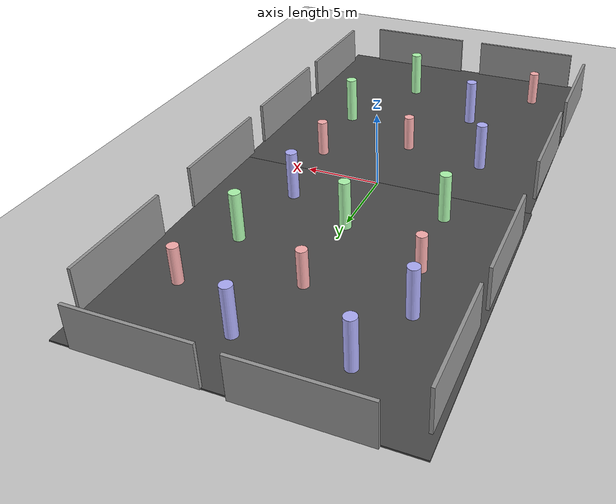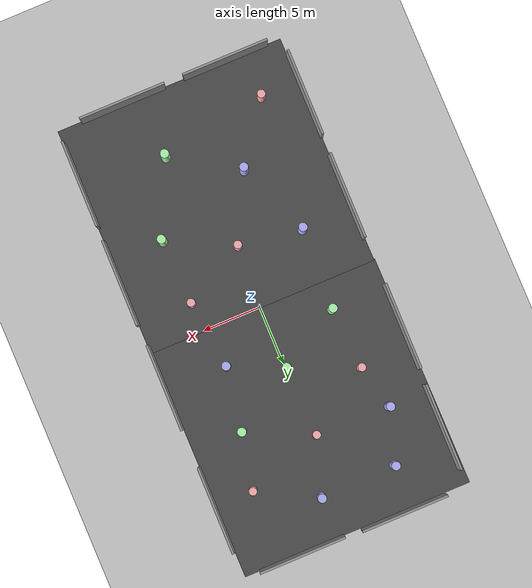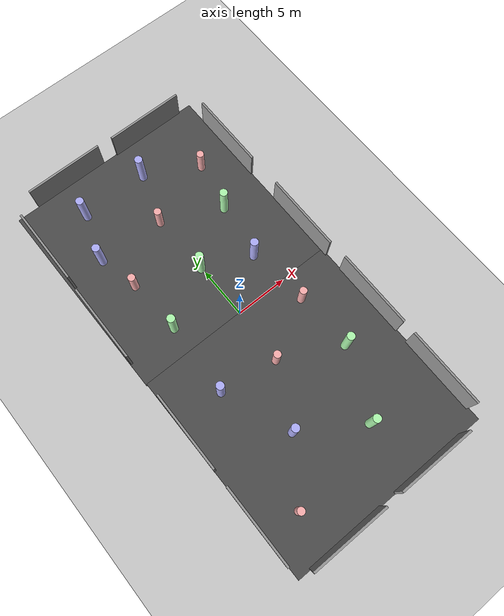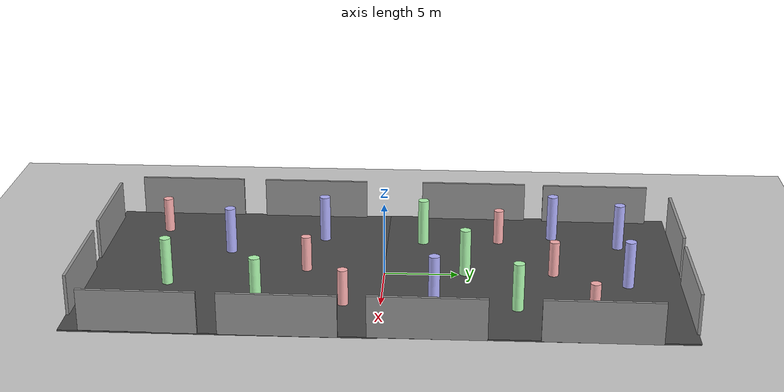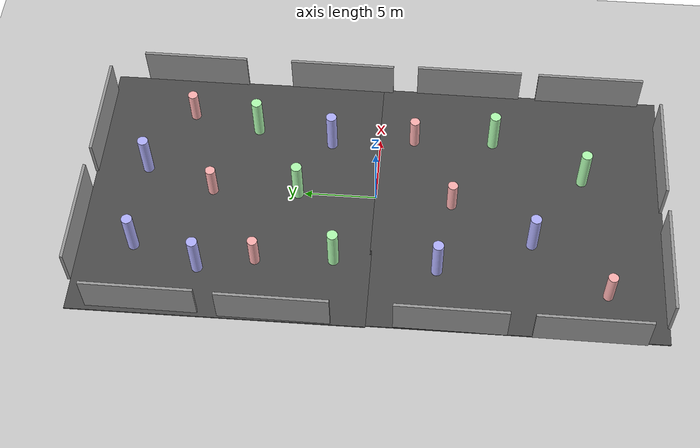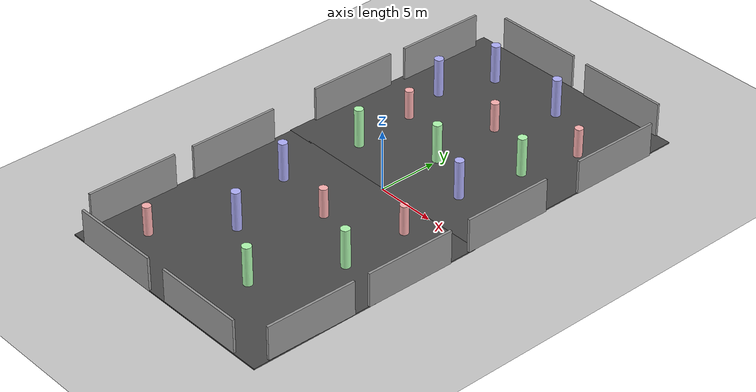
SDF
<sdf version="1.6">
 <world name="default">
  <light name="sun" type="directional">
   <pose>0 0 10 0 -0 0</pose>
   <diffuse>0.8 0.8 0.8 1</diffuse>
   <specular>0.2 0.2 0.2 1</specular>
   <attenuation>
    <range>1000</range>
    <constant>0.9</constant>
    <linear>0.01</linear>
    <quadratic>0.001</quadratic>
   </attenuation>
   <direction>-0.5 0.1 -0.9</direction>
  </light>
  <model name="ground_plane">
   <static>1</static>
   <link name="link">
    <collision name="collision">
     <geometry><plane><normal>0 0 1</normal><size>100 100</size></plane></geometry>
     <surface><friction><ode><mu>100</mu><mu2>50</mu2></ode></friction></surface>
    </collision>
    <visual name="visual">
     <cast_shadows>0</cast_shadows>
     <geometry><plane><normal>0 0 1</normal><size>100 100</size></plane></geometry>
     <material>
      <script><uri>file://media/materials/scripts/gazebo.material</uri><name>Gazebo/Grey</name></script>
     </material>
    </visual>
   </link>
  </model>
  <gravity>0 0 -9.8</gravity>
  <magnetic_field>6e-06 2.3e-05 -4.2e-05</magnetic_field>
  <atmosphere type="adiabatic"/>
  <physics name="default_physics" default="0" type="ode">
   <max_step_size>0.001</max_step_size>
   <real_time_factor>1</real_time_factor>
   <real_time_update_rate>1000</real_time_update_rate>
  </physics>
  <scene><ambient>0.4 0.4 0.4 1</ambient><background>0.7 0.7 0.7 1</background><shadows>1</shadows></scene>
  <spherical_coordinates>
   <surface_model>EARTH_WGS84</surface_model>
   <latitude_deg>0</latitude_deg>
   <longitude_deg>0</longitude_deg>
   <elevation>0</elevation>
   <heading_deg>0</heading_deg>
  </spherical_coordinates>
  <model name="asphalt_plane">
   <static>1</static>
   <link name="link">
    <collision name="collision"><geometry><box><size>20 20 0.1</size></box></geometry></collision>
    <visual name="visual">
     <cast_shadows>0</cast_shadows>
     <geometry><box><size>20 20 0.1</size></box></geometry>
     <material>
      <script>
       <uri>model://asphalt_plane/materials/scripts</uri>
       <uri>model://asphalt_plane/materials/textures</uri>
       <name>vrc/asphalt</name>
      </script>
     </material>
    </visual>
   </link>
   <pose>-0.322451 9.95468 0 0 -0 0</pose>
  </model>
  <model name="asphalt_plane_0">
   <static>1</static>
   <link name="link">
    <collision name="collision"><geometry><box><size>20 20 0.1</size></box></geometry></collision>
    <visual name="visual">
     <cast_shadows>0</cast_shadows>
     <geometry><box><size>20 20 0.1</size></box></geometry>
     <material>
      <script>
       <uri>model://asphalt_plane/materials/scripts</uri>
       <uri>model://asphalt_plane/materials/textures</uri>
       <name>vrc/asphalt</name>
      </script>
     </material>
    </visual>
   </link>
   <pose>-0.237103 -9.93402 0 0 -0 0</pose>
  </model>
  <model name="grey_wall_1">
   <static>1</static>
   <link name="link">
    <pose>0 0 1.4 0 -0 0</pose>
    <collision name="collision"><geometry><box><size>7.5 0.2 2.8</size></box></geometry></collision>
    <visual name="visual">
     <cast_shadows>0</cast_shadows>
     <geometry><box><size>7.5 0.2 2.8</size></box></geometry>
     <material>
      <script>
       <uri>model://grey_wall/materials/scripts</uri>
       <uri>model://grey_wall/materials/textures</uri>
       <name>vrc/grey_wall</name>
      </script>
     </material>
    </visual>
   </link>
   <pose>-5.27935 -19.8635 0 0 -0 0</pose>
  </model>
  <model name="grey_wall_clone">
   <static>1</static>
   <link name="link">
    <pose>0 0 1.4 0 -0 0</pose>
    <collision name="collision"><geometry><box><size>7.5 0.2 2.8</size></box></geometry></collision>
    <visual name="visual">
     <cast_shadows>0</cast_shadows>
     <geometry><box><size>7.5 0.2 2.8</size></box></geometry>
     <material>
      <script>
       <uri>model://grey_wall/materials/scripts</uri>
       <uri>model://grey_wall/materials/textures</uri>
       <name>vrc/grey_wall</name>
      </script>
     </material>
    </visual>
   </link>
   <pose>-10.1231 -5.56788 0.02575 0 -0 1.56292</pose>
  </model>
  <model name="grey_wall_clone_clone">
   <static>1</static>
   <link name="link">
    <pose>0 0 1.4 0 -0 0</pose>
    <collision name="collision"><geometry><box><size>7.5 0.2 2.8</size></box></geometry></collision>
    <visual name="visual">
     <cast_shadows>0</cast_shadows>
     <geometry><box><size>7.5 0.2 2.8</size></box></geometry>
     <material>
      <script>
       <uri>model://grey_wall/materials/scripts</uri>
       <uri>model://grey_wall/materials/textures</uri>
       <name>vrc/grey_wall</name>
      </script>
     </material>
    </visual>
   </link>
   <pose>-10.2186 -14.6793 0.02575 0 -0 1.56292</pose>
  </model>
  <model name="grey_wall_1_clone_0">
   <static>1</static>
   <link name="link">
    <pose>0 0 1.4 0 -0 0</pose>
    <collision name="collision"><geometry><box><size>7.5 0.2 2.8</size></box></geometry></collision>
    <visual name="visual">
     <cast_shadows>0</cast_shadows>
     <geometry><box><size>7.5 0.2 2.8</size></box></geometry>
     <material>
      <script>
       <uri>model://grey_wall/materials/scripts</uri>
       <uri>model://grey_wall/materials/textures</uri>
       <name>vrc/grey_wall</name>
      </script>
     </material>
    </visual>
   </link>
   <pose>3.85954 -19.8174 0 0 -0 0</pose>
  </model>
  <model name="grey_wall_clone_clone_clone">
   <static>1</static>
   <link name="link">
    <pose>0 0 1.4 0 -0 0</pose>
    <collision name="collision"><geometry><box><size>7.5 0.2 2.8</size></box></geometry></collision>
    <visual name="visual">
     <cast_shadows>0</cast_shadows>
     <geometry><box><size>7.5 0.2 2.8</size></box></geometry>
     <material>
      <script>
       <uri>model://grey_wall/materials/scripts</uri>
       <uri>model://grey_wall/materials/textures</uri>
       <name>vrc/grey_wall</name>
      </script>
     </material>
    </visual>
   </link>
   <pose>9.65741 -14.8879 0.02575 0 -0 1.56292</pose>
  </model>
  <model name="grey_wall_clone_clone_clone_0">
   <static>1</static>
   <link name="link">
    <pose>0 0 1.4 0 -0 0</pose>
    <collision name="collision"><geometry><box><size>7.5 0.2 2.8</size></box></geometry></collision>
    <visual name="visual">
     <cast_shadows>0</cast_shadows>
     <geometry><box><size>7.5 0.2 2.8</size></box></geometry>
     <material>
      <script>
       <uri>model://grey_wall/materials/scripts</uri>
       <uri>model://grey_wall/materials/textures</uri>
       <name>vrc/grey_wall</name>
      </script>
     </material>
    </visual>
   </link>
   <pose>9.75 -6.14282 0.02575 0 -0 1.56292</pose>
  </model>
  <model name="grey_wall_clone_clone_clone_1">
   <static>1</static>
   <link name="link">
    <pose>0 0 1.4 0 -0 0</pose>
    <collision name="collision"><geometry><box><size>7.5 0.2 2.8</size></box></geometry></collision>
    <visual name="visual">
     <cast_shadows>0</cast_shadows>
     <geometry><box><size>7.5 0.2 2.8</size></box></geometry>
     <material>
      <script>
       <uri>model://grey_wall/materials/scripts</uri>
       <uri>model://grey_wall/materials/textures</uri>
       <name>vrc/grey_wall</name>
      </script>
     </material>
    </visual>
   </link>
   <pose>9.70851 3.1311 0.02575 0 -0 1.56292</pose>
  </model>
  <model name="grey_wall_clone_clone_clone_2">
   <static>1</static>
   <link name="link">
    <pose>0 0 1.4 0 -0 0</pose>
    <collision name="collision"><geometry><box><size>7.5 0.2 2.8</size></box></geometry></collision>
    <visual name="visual">
     <cast_shadows>0</cast_shadows>
     <geometry><box><size>7.5 0.2 2.8</size></box></geometry>
     <material>
      <script>
       <uri>model://grey_wall/materials/scripts</uri>
       <uri>model://grey_wall/materials/textures</uri>
       <name>vrc/grey_wall</name>
      </script>
     </material>
    </visual>
   </link>
   <pose>9.72006 13.9068 0.02575 0 -0 1.56292</pose>
  </model>
  <model name="grey_wall_clone_clone_0">
   <static>1</static>
   <link name="link">
    <pose>0 0 1.4 0 -0 0</pose>
    <collision name="collision"><geometry><box><size>7.5 0.2 2.8</size></box></geometry></collision>
    <visual name="visual">
     <cast_shadows>0</cast_shadows>
     <geometry><box><size>7.5 0.2 2.8</size></box></geometry>
     <material>
      <script>
       <uri>model://grey_wall/materials/scripts</uri>
       <uri>model://grey_wall/materials/textures</uri>
       <name>vrc/grey_wall</name>
      </script>
     </material>
    </visual>
   </link>
   <pose>-10.1214 6.02392 0.02575 0 -0 1.56292</pose>
  </model>
  <model name="grey_wall_clone_clone_1">
   <static>1</static>
   <link name="link">
    <pose>0 0 1.4 0 -0 0</pose>
    <collision name="collision"><geometry><box><size>7.5 0.2 2.8</size></box></geometry></collision>
    <visual name="visual">
     <cast_shadows>0</cast_shadows>
     <geometry><box><size>7.5 0.2 2.8</size></box></geometry>
     <material>
      <script>
       <uri>model://grey_wall/materials/scripts</uri>
       <uri>model://grey_wall/materials/textures</uri>
       <name>vrc/grey_wall</name>
      </script>
     </material>
    </visual>
   </link>
   <pose>-9.93605 14.844 0.02575 0 -0 1.56292</pose>
  </model>
  <model name="grey_wall_1_clone_0_clone">
   <static>1</static>
   <link name="link">
    <pose>0 0 1.4 0 -0 0</pose>
    <collision name="collision"><geometry><box><size>7.5 0.2 2.8</size></box></geometry></collision>
    <visual name="visual">
     <cast_shadows>0</cast_shadows>
     <geometry><box><size>7.5 0.2 2.8</size></box></geometry>
     <material>
      <script>
       <uri>model://grey_wall/materials/scripts</uri>
       <uri>model://grey_wall/materials/textures</uri>
       <name>vrc/grey_wall</name>
      </script>
     </material>
    </visual>
   </link>
   <pose>4.62719 19.9355 0 0 -0 0</pose>
  </model>
  <model name="grey_wall_1_clone_0_clone_0">
   <static>1</static>
   <link name="link">
    <pose>0 0 1.4 0 -0 0</pose>
    <collision name="collision"><geometry><box><size>7.5 0.2 2.8</size></box></geometry></collision>
    <visual name="visual">
     <cast_shadows>0</cast_shadows>
     <geometry><box><size>7.5 0.2 2.8</size></box></geometry>
     <material>
      <script>
       <uri>model://grey_wall/materials/scripts</uri>
       <uri>model://grey_wall/materials/textures</uri>
       <name>vrc/grey_wall</name>
      </script>
     </material>
    </visual>
   </link>
   <pose>-4.33227 20.0594 0 0 -0 0</pose>
  </model>
  <model name="unit_cylinder_green">
   <link name="link_1">
    <pose>0.746146 -0.350774 -0.71216 0 0 -0.000199</pose>
    <inertial>
     <mass>1.76162</mass>
     <inertia><ixx>1.57891</ixx><ixy>0</ixy><ixz>0</ixz><iyy>1.57891</iyy><iyz>0</iyz><izz>0.120606</izz></inertia>
    </inertial>
    <visual name="visual">
     <geometry><cylinder><radius>0.370036</radius><length>3.2163</length></cylinder></geometry>
     <material>
      <lighting>1</lighting>
      <script><uri>file://media/materials/scripts/gazebo.material</uri><name>Gazebo/Grey</name></script>
      <ambient>0.3 1 0.3 1</ambient>
      <diffuse>0.7 1 0.7 1</diffuse>
      <specular>0.01 1 0.01 1</specular>
      <emissive>0 1 0 1</emissive>
      <shader type="vertex"><normal_map>__default__</normal_map></shader>
     </material>
    </visual>
    <collision name="collision">
     <geometry><cylinder><radius>0.370036</radius><length>3.21631</length></cylinder></geometry>
     <surface>
      <friction>
       <ode><mu>1</mu><mu2>1</mu2><fdir1>0 0 0</fdir1><slip1>0</slip1><slip2>0</slip2></ode>
       <torsional>
        <coefficient>1</coefficient>
        <patch_radius>0</patch_radius>
        <surface_radius>0</surface_radius>
        <use_patch_radius>1</use_patch_radius>
        <ode><slip>0</slip></ode>
       </torsional>
      </friction>
      <bounce><restitution_coefficient>0</restitution_coefficient><threshold>1e+06</threshold></bounce>
      <contact>
       <collide_without_contact>0</collide_without_contact>
       <collide_without_contact_bitmask>1</collide_without_contact_bitmask>
       <collide_bitmask>1</collide_bitmask>
       <ode>
        <soft_cfm>0</soft_cfm>
        <soft_erp>0.2</soft_erp>
        <kp>1e+13</kp>
        <kd>1</kd>
        <max_vel>0.01</max_vel>
        <min_depth>0</min_depth>
       </ode>
       <bullet>
        <split_impulse>1</split_impulse>
        <split_impulse_penetration_threshold>-0.01</split_impulse_penetration_threshold>
        <soft_cfm>0</soft_cfm>
        <soft_erp>0.2</soft_erp>
        <kp>1e+13</kp>
        <kd>1</kd>
       </bullet>
      </contact>
     </surface>
    </collision>
   </link>
   <static>0</static>
   <pose>-6.14627 2.84036 2.3703 6e-06 -1.6e-05 -0.001871</pose>
  </model>
  <model name="unit_cylinder_blue">
   <link name="link_1">
    <pose>0.746146 -0.350774 -0.71216 0 0 -0.000199</pose>
    <inertial>
     <mass>1.76162</mass>
     <inertia><ixx>1.57891</ixx><ixy>0</ixy><ixz>0</ixz><iyy>1.57891</iyy><iyz>0</iyz><izz>0.120606</izz></inertia>
    </inertial>
    <visual name="visual">
     <geometry><cylinder><radius>0.370036</radius><length>3.2163</length></cylinder></geometry>
     <material>
      <lighting>1</lighting>
      <script><uri>file://media/materials/scripts/gazebo.material</uri><name>Gazebo/Grey</name></script>
      <ambient>0.3 0.3 1 1</ambient>
      <diffuse>0.7 0.7 1 1</diffuse>
      <specular>0 0 1 1</specular>
      <emissive>0 0 1 1</emissive>
      <shader type="vertex"><normal_map>__default__</normal_map></shader>
     </material>
    </visual>
    <collision name="collision">
     <geometry><cylinder><radius>0.370036</radius><length>3.21631</length></cylinder></geometry>
     <surface>
      <friction>
       <ode><mu>1</mu><mu2>1</mu2><fdir1>0 0 0</fdir1><slip1>0</slip1><slip2>0</slip2></ode>
       <torsional>
        <coefficient>1</coefficient>
        <patch_radius>0</patch_radius>
        <surface_radius>0</surface_radius>
        <use_patch_radius>1</use_patch_radius>
        <ode><slip>0</slip></ode>
       </torsional>
      </friction>
      <bounce><restitution_coefficient>0</restitution_coefficient><threshold>1e+06</threshold></bounce>
      <contact>
       <collide_without_contact>0</collide_without_contact>
       <collide_without_contact_bitmask>1</collide_without_contact_bitmask>
       <collide_bitmask>1</collide_bitmask>
       <ode>
        <soft_cfm>0</soft_cfm>
        <soft_erp>0.2</soft_erp>
        <kp>1e+13</kp>
        <kd>1</kd>
        <max_vel>0.01</max_vel>
        <min_depth>0</min_depth>
       </ode>
       <bullet>
        <split_impulse>1</split_impulse>
        <split_impulse_penetration_threshold>-0.01</split_impulse_penetration_threshold>
        <soft_cfm>0</soft_cfm>
        <soft_erp>0.2</soft_erp>
        <kp>1e+13</kp>
        <kd>1</kd>
       </bullet>
      </contact>
     </surface>
    </collision>
   </link>
   <static>0</static>
   <pose>3.59166 3.60449 2.37031 -1.2e-05 -3e-06 0.250368</pose>
  </model>
  <model name="unit_cylinder_blue_clone_0">
   <link name="link_1">
    <pose>0.746146 -0.350774 -0.71216 0 0 -0.000199</pose>
    <inertial>
     <mass>1.76162</mass>
     <inertia><ixx>1.57891</ixx><ixy>0</ixy><ixz>0</ixz><iyy>1.57891</iyy><iyz>0</iyz><izz>0.120606</izz></inertia>
    </inertial>
    <visual name="visual">
     <geometry><cylinder><radius>0.370036</radius><length>3.2163</length></cylinder></geometry>
     <material>
      <lighting>1</lighting>
      <script><uri>file://media/materials/scripts/gazebo.material</uri><name>Gazebo/Grey</name></script>
      <ambient>0.3 0.3 1 1</ambient>
      <diffuse>0.7 0.7 1 1</diffuse>
      <specular>0 0 1 1</specular>
      <emissive>0 0 1 1</emissive>
      <shader type="vertex"><normal_map>__default__</normal_map></shader>
     </material>
    </visual>
    <collision name="collision">
     <geometry><cylinder><radius>0.370036</radius><length>3.21631</length></cylinder></geometry>
     <surface>
      <friction>
       <ode><mu>1</mu><mu2>1</mu2><fdir1>0 0 0</fdir1><slip1>0</slip1><slip2>0</slip2></ode>
       <torsional>
        <coefficient>1</coefficient>
        <patch_radius>0</patch_radius>
        <surface_radius>0</surface_radius>
        <use_patch_radius>1</use_patch_radius>
        <ode><slip>0</slip></ode>
       </torsional>
      </friction>
      <bounce><restitution_coefficient>0</restitution_coefficient><threshold>1e+06</threshold></bounce>
      <contact>
       <collide_without_contact>0</collide_without_contact>
       <collide_without_contact_bitmask>1</collide_without_contact_bitmask>
       <collide_bitmask>1</collide_bitmask>
       <ode>
        <soft_cfm>0</soft_cfm>
        <soft_erp>0.2</soft_erp>
        <kp>1e+13</kp>
        <kd>1</kd>
        <max_vel>0.01</max_vel>
        <min_depth>0</min_depth>
       </ode>
       <bullet>
        <split_impulse>1</split_impulse>
        <split_impulse_penetration_threshold>-0.01</split_impulse_penetration_threshold>
        <soft_cfm>0</soft_cfm>
        <soft_erp>0.2</soft_erp>
        <kp>1e+13</kp>
        <kd>1</kd>
       </bullet>
      </contact>
     </surface>
    </collision>
   </link>
   <static>0</static>
   <pose>-4.01062 -10.743 2.37031 5e-06 -1.3e-05 0.249825</pose>
  </model>
  <model name="unit_cylinder_green_clone">
   <link name="link_1">
    <pose>0.746146 -0.350774 -0.71216 0 0 -0.000199</pose>
    <inertial>
     <mass>1.76162</mass>
     <inertia><ixx>1.57891</ixx><ixy>0</ixy><ixz>0</ixz><iyy>1.57891</iyy><iyz>0</iyz><izz>0.120606</izz></inertia>
    </inertial>
    <visual name="visual">
     <geometry><cylinder><radius>0.370036</radius><length>3.2163</length></cylinder></geometry>
     <material>
      <lighting>1</lighting>
      <script><uri>file://media/materials/scripts/gazebo.material</uri><name>Gazebo/Grey</name></script>
      <ambient>0.3 1 0.3 1</ambient>
      <diffuse>0.7 1 0.7 1</diffuse>
      <specular>0.01 1 0.01 1</specular>
      <emissive>0 1 0 1</emissive>
      <shader type="vertex"><normal_map>__default__</normal_map></shader>
     </material>
    </visual>
    <collision name="collision">
     <geometry><cylinder><radius>0.370036</radius><length>3.21631</length></cylinder></geometry>
     <surface>
      <friction>
       <ode><mu>1</mu><mu2>1</mu2><fdir1>0 0 0</fdir1><slip1>0</slip1><slip2>0</slip2></ode>
       <torsional>
        <coefficient>1</coefficient>
        <patch_radius>0</patch_radius>
        <surface_radius>0</surface_radius>
        <use_patch_radius>1</use_patch_radius>
        <ode><slip>0</slip></ode>
       </torsional>
      </friction>
      <bounce><restitution_coefficient>0</restitution_coefficient><threshold>1e+06</threshold></bounce>
      <contact>
       <collide_without_contact>0</collide_without_contact>
       <collide_without_contact_bitmask>1</collide_without_contact_bitmask>
       <collide_bitmask>1</collide_bitmask>
       <ode>
        <soft_cfm>0</soft_cfm>
        <soft_erp>0.2</soft_erp>
        <kp>1e+13</kp>
        <kd>1</kd>
        <max_vel>0.01</max_vel>
        <min_depth>0</min_depth>
       </ode>
       <bullet>
        <split_impulse>1</split_impulse>
        <split_impulse_penetration_threshold>-0.01</split_impulse_penetration_threshold>
        <soft_cfm>0</soft_cfm>
        <soft_erp>0.2</soft_erp>
        <kp>1e+13</kp>
        <kd>1</kd>
       </bullet>
      </contact>
     </surface>
    </collision>
   </link>
   <static>0</static>
   <pose>4.5069 -7.71614 2.37031 1.4e-05 -9e-06 -0.001733</pose>
  </model>
  <model name="unit_cylinder_red_clone">
   <link name="link">
    <inertial>
     <mass>1</mass>
     <inertia><ixx>0.145833</ixx><ixy>0</ixy><ixz>0</ixz><iyy>0.145833</iyy><iyz>0</iyz><izz>0.125</izz></inertia>
    </inertial>
    <visual name="visual">
     <geometry><cylinder><radius>0.342753</radius><length>2.42433</length></cylinder></geometry>
     <material>
      <script><name>Gazebo/Grey</name><uri>file://media/materials/scripts/gazebo.material</uri></script>
      <ambient>1 0.3 0.3 1</ambient>
      <diffuse>1 0.7 0.7 1</diffuse>
      <specular>1 0.01 0.01 1</specular>
      <emissive>1 0 0 1</emissive>
      <shader type="vertex"><normal_map>__default__</normal_map></shader>
     </material>
    </visual>
    <collision name="collision">
     <geometry><cylinder><radius>0.342753</radius><length>2.42433</length></cylinder></geometry>
     <surface>
      <friction>
       <ode><mu>1</mu><mu2>1</mu2><fdir1>0 0 0</fdir1><slip1>0</slip1><slip2>0</slip2></ode>
       <torsional>
        <coefficient>1</coefficient>
        <patch_radius>0</patch_radius>
        <surface_radius>0</surface_radius>
        <use_patch_radius>1</use_patch_radius>
        <ode><slip>0</slip></ode>
       </torsional>
      </friction>
      <bounce><restitution_coefficient>0</restitution_coefficient><threshold>1e+06</threshold></bounce>
      <contact>
       <collide_without_contact>0</collide_without_contact>
       <collide_without_contact_bitmask>1</collide_without_contact_bitmask>
       <collide_bitmask>1</collide_bitmask>
       <ode>
        <soft_cfm>0</soft_cfm>
        <soft_erp>0.2</soft_erp>
        <kp>1e+13</kp>
        <kd>1</kd>
        <max_vel>0.01</max_vel>
        <min_depth>0</min_depth>
       </ode>
       <bullet>
        <split_impulse>1</split_impulse>
        <split_impulse_penetration_threshold>-0.01</split_impulse_penetration_threshold>
        <soft_cfm>0</soft_cfm>
        <soft_erp>0.2</soft_erp>
        <kp>1e+13</kp>
        <kd>1</kd>
       </bullet>
      </contact>
     </surface>
    </collision>
   </link>
   <static>0</static>
   <pose>6.33731 13.6494 1.26216 -1e-06 -1e-06 -0.010124</pose>
  </model>
  <model name="unit_cylinder_red_clone_0">
   <link name="link">
    <inertial>
     <mass>1</mass>
     <inertia><ixx>0.145833</ixx><ixy>0</ixy><ixz>0</ixz><iyy>0.145833</iyy><iyz>0</iyz><izz>0.125</izz></inertia>
    </inertial>
    <visual name="visual">
     <geometry><cylinder><radius>0.342753</radius><length>2.42433</length></cylinder></geometry>
     <material>
      <script><name>Gazebo/Grey</name><uri>file://media/materials/scripts/gazebo.material</uri></script>
      <ambient>1 0.3 0.3 1</ambient>
      <diffuse>1 0.7 0.7 1</diffuse>
      <specular>1 0.01 0.01 1</specular>
      <emissive>1 0 0 1</emissive>
      <shader type="vertex"><normal_map>__default__</normal_map></shader>
     </material>
    </visual>
    <collision name="collision">
     <geometry><cylinder><radius>0.342753</radius><length>2.42433</length></cylinder></geometry>
     <surface>
      <friction>
       <ode><mu>1</mu><mu2>1</mu2><fdir1>0 0 0</fdir1><slip1>0</slip1><slip2>0</slip2></ode>
       <torsional>
        <coefficient>1</coefficient>
        <patch_radius>0</patch_radius>
        <surface_radius>0</surface_radius>
        <use_patch_radius>1</use_patch_radius>
        <ode><slip>0</slip></ode>
       </torsional>
      </friction>
      <bounce><restitution_coefficient>0</restitution_coefficient><threshold>1e+06</threshold></bounce>
      <contact>
       <collide_without_contact>0</collide_without_contact>
       <collide_without_contact_bitmask>1</collide_without_contact_bitmask>
       <collide_bitmask>1</collide_bitmask>
       <ode>
        <soft_cfm>0</soft_cfm>
        <soft_erp>0.2</soft_erp>
        <kp>1e+13</kp>
        <kd>1</kd>
        <max_vel>0.01</max_vel>
        <min_depth>0</min_depth>
       </ode>
       <bullet>
        <split_impulse>1</split_impulse>
        <split_impulse_penetration_threshold>-0.01</split_impulse_penetration_threshold>
        <soft_cfm>0</soft_cfm>
        <soft_erp>0.2</soft_erp>
        <kp>1e+13</kp>
        <kd>1</kd>
       </bullet>
      </contact>
     </surface>
    </collision>
   </link>
   <static>0</static>
   <pose>-0.305686 -5.31238 1.26216 6e-06 1.4e-05 -0.010066</pose>
  </model>
  <model name="unit_cylinder_green_clone_0">
   <link name="link_1">
    <pose>0.746146 -0.350774 -0.71216 0 0 -0.000199</pose>
    <inertial>
     <mass>1.76162</mass>
     <inertia><ixx>1.57891</ixx><ixy>0</ixy><ixz>0</ixz><iyy>1.57891</iyy><iyz>0</iyz><izz>0.120606</izz></inertia>
    </inertial>
    <visual name="visual">
     <geometry><cylinder><radius>0.370036</radius><length>3.2163</length></cylinder></geometry>
     <material>
      <lighting>1</lighting>
      <script><uri>file://media/materials/scripts/gazebo.material</uri><name>Gazebo/Grey</name></script>
      <ambient>0.3 1 0.3 1</ambient>
      <diffuse>0.7 1 0.7 1</diffuse>
      <specular>0.01 1 0.01 1</specular>
      <emissive>0 1 0 1</emissive>
      <shader type="vertex"><normal_map>__default__</normal_map></shader>
     </material>
    </visual>
    <collision name="collision">
     <geometry><cylinder><radius>0.370036</radius><length>3.21631</length></cylinder></geometry>
     <surface>
      <friction>
       <ode><mu>1</mu><mu2>1</mu2><fdir1>0 0 0</fdir1><slip1>0</slip1><slip2>0</slip2></ode>
       <torsional>
        <coefficient>1</coefficient>
        <patch_radius>0</patch_radius>
        <surface_radius>0</surface_radius>
        <use_patch_radius>1</use_patch_radius>
        <ode><slip>0</slip></ode>
       </torsional>
      </friction>
      <bounce><restitution_coefficient>0</restitution_coefficient><threshold>1e+06</threshold></bounce>
      <contact>
       <collide_without_contact>0</collide_without_contact>
       <collide_without_contact_bitmask>1</collide_without_contact_bitmask>
       <collide_bitmask>1</collide_bitmask>
       <ode>
        <soft_cfm>0</soft_cfm>
        <soft_erp>0.2</soft_erp>
        <kp>1e+13</kp>
        <kd>1</kd>
        <max_vel>0.01</max_vel>
        <min_depth>0</min_depth>
       </ode>
       <bullet>
        <split_impulse>1</split_impulse>
        <split_impulse_penetration_threshold>-0.01</split_impulse_penetration_threshold>
        <soft_cfm>0</soft_cfm>
        <soft_erp>0.2</soft_erp>
        <kp>1e+13</kp>
        <kd>1</kd>
       </bullet>
      </contact>
     </surface>
    </collision>
   </link>
   <static>0</static>
   <pose>4.54787 9.2068 2.37031 1.3e-05 -9e-06 -0.001616</pose>
  </model>
  <model name="unit_cylinder_red_clone_1">
   <link name="link">
    <inertial>
     <mass>1</mass>
     <inertia><ixx>0.145833</ixx><ixy>0</ixy><ixz>0</ixz><iyy>0.145833</iyy><iyz>0</iyz><izz>0.125</izz></inertia>
    </inertial>
    <visual name="visual">
     <geometry><cylinder><radius>0.342753</radius><length>2.42433</length></cylinder></geometry>
     <material>
      <script><name>Gazebo/Grey</name><uri>file://media/materials/scripts/gazebo.material</uri></script>
      <ambient>1 0.3 0.3 1</ambient>
      <diffuse>1 0.7 0.7 1</diffuse>
      <specular>1 0.01 0.01 1</specular>
      <emissive>1 0 0 1</emissive>
      <shader type="vertex"><normal_map>__default__</normal_map></shader>
     </material>
    </visual>
    <collision name="collision">
     <geometry><cylinder><radius>0.342753</radius><length>2.42433</length></cylinder></geometry>
     <surface>
      <friction>
       <ode><mu>1</mu><mu2>1</mu2><fdir1>0 0 0</fdir1><slip1>0</slip1><slip2>0</slip2></ode>
       <torsional>
        <coefficient>1</coefficient>
        <patch_radius>0</patch_radius>
        <surface_radius>0</surface_radius>
        <use_patch_radius>1</use_patch_radius>
        <ode><slip>0</slip></ode>
       </torsional>
      </friction>
      <bounce><restitution_coefficient>0</restitution_coefficient><threshold>1e+06</threshold></bounce>
      <contact>
       <collide_without_contact>0</collide_without_contact>
       <collide_without_contact_bitmask>1</collide_without_contact_bitmask>
       <collide_bitmask>1</collide_bitmask>
       <ode>
        <soft_cfm>0</soft_cfm>
        <soft_erp>0.2</soft_erp>
        <kp>1e+13</kp>
        <kd>1</kd>
        <max_vel>0.01</max_vel>
        <min_depth>0</min_depth>
       </ode>
       <bullet>
        <split_impulse>1</split_impulse>
        <split_impulse_penetration_threshold>-0.01</split_impulse_penetration_threshold>
        <soft_cfm>0</soft_cfm>
        <soft_erp>0.2</soft_erp>
        <kp>1e+13</kp>
        <kd>1</kd>
       </bullet>
      </contact>
     </surface>
    </collision>
   </link>
   <static>0</static>
   <pose>-5.73813 7.81063 1.26217 3e-06 1.1e-05 -0.009953</pose>
  </model>
  <model name="unit_cylinder_blue_clone_clone">
   <link name="link_1">
    <pose>0.746146 -0.350774 -0.71216 0 0 -0.000199</pose>
    <inertial>
     <mass>1.76162</mass>
     <inertia><ixx>1.57891</ixx><ixy>0</ixy><ixz>0</ixz><iyy>1.57891</iyy><iyz>0</iyz><izz>0.120606</izz></inertia>
    </inertial>
    <visual name="visual">
     <geometry><cylinder><radius>0.370036</radius><length>3.2163</length></cylinder></geometry>
     <material>
      <lighting>1</lighting>
      <script><uri>file://media/materials/scripts/gazebo.material</uri><name>Gazebo/Grey</name></script>
      <ambient>0.3 0.3 1 1</ambient>
      <diffuse>0.7 0.7 1 1</diffuse>
      <specular>0 0 1 1</specular>
      <emissive>0 0 1 1</emissive>
      <shader type="vertex"><normal_map>__default__</normal_map></shader>
     </material>
    </visual>
    <collision name="collision">
     <geometry><cylinder><radius>0.370036</radius><length>3.21631</length></cylinder></geometry>
     <surface>
      <friction>
       <ode><mu>1</mu><mu2>1</mu2><fdir1>0 0 0</fdir1><slip1>0</slip1><slip2>0</slip2></ode>
       <torsional>
        <coefficient>1</coefficient>
        <patch_radius>0</patch_radius>
        <surface_radius>0</surface_radius>
        <use_patch_radius>1</use_patch_radius>
        <ode><slip>0</slip></ode>
       </torsional>
      </friction>
      <bounce><restitution_coefficient>0</restitution_coefficient><threshold>1e+06</threshold></bounce>
      <contact>
       <collide_without_contact>0</collide_without_contact>
       <collide_without_contact_bitmask>1</collide_without_contact_bitmask>
       <collide_bitmask>1</collide_bitmask>
       <ode>
        <soft_cfm>0</soft_cfm>
        <soft_erp>0.2</soft_erp>
        <kp>1e+13</kp>
        <kd>1</kd>
        <max_vel>0.01</max_vel>
        <min_depth>0</min_depth>
       </ode>
       <bullet>
        <split_impulse>1</split_impulse>
        <split_impulse_penetration_threshold>-0.01</split_impulse_penetration_threshold>
        <soft_cfm>0</soft_cfm>
        <soft_erp>0.2</soft_erp>
        <kp>1e+13</kp>
        <kd>1</kd>
       </bullet>
      </contact>
     </surface>
    </collision>
   </link>
   <static>0</static>
   <pose>0.574839 16.4537 2.3703 5e-06 -1.3e-05 0.250191</pose>
  </model>
  <model name="unit_cylinder_green_clone_0_clone">
   <link name="link_1">
    <pose>0.746146 -0.350774 -0.71216 0 0 -0.000199</pose>
    <inertial>
     <mass>1.76162</mass>
     <inertia><ixx>1.57891</ixx><ixy>0</ixy><ixz>0</ixz><iyy>1.57891</iyy><iyz>0</iyz><izz>0.120606</izz></inertia>
    </inertial>
    <visual name="visual">
     <geometry><cylinder><radius>0.370036</radius><length>3.2163</length></cylinder></geometry>
     <material>
      <lighting>1</lighting>
      <script><uri>file://media/materials/scripts/gazebo.material</uri><name>Gazebo/Grey</name></script>
      <ambient>0.3 1 0.3 1</ambient>
      <diffuse>0.7 1 0.7 1</diffuse>
      <specular>0.01 1 0.01 1</specular>
      <emissive>0 1 0 1</emissive>
      <shader type="vertex"><normal_map>__default__</normal_map></shader>
     </material>
    </visual>
    <collision name="collision">
     <geometry><cylinder><radius>0.370036</radius><length>3.21631</length></cylinder></geometry>
     <surface>
      <friction>
       <ode><mu>1</mu><mu2>1</mu2><fdir1>0 0 0</fdir1><slip1>0</slip1><slip2>0</slip2></ode>
       <torsional>
        <coefficient>1</coefficient>
        <patch_radius>0</patch_radius>
        <surface_radius>0</surface_radius>
        <use_patch_radius>1</use_patch_radius>
        <ode><slip>0</slip></ode>
       </torsional>
      </friction>
      <bounce><restitution_coefficient>0</restitution_coefficient><threshold>1e+06</threshold></bounce>
      <contact>
       <collide_without_contact>0</collide_without_contact>
       <collide_without_contact_bitmask>1</collide_without_contact_bitmask>
       <collide_bitmask>1</collide_bitmask>
       <ode>
        <soft_cfm>0</soft_cfm>
        <soft_erp>0.2</soft_erp>
        <kp>1e+13</kp>
        <kd>1</kd>
        <max_vel>0.01</max_vel>
        <min_depth>0</min_depth>
       </ode>
       <bullet>
        <split_impulse>1</split_impulse>
        <split_impulse_penetration_threshold>-0.01</split_impulse_penetration_threshold>
        <soft_cfm>0</soft_cfm>
        <soft_erp>0.2</soft_erp>
        <kp>1e+13</kp>
        <kd>1</kd>
       </bullet>
      </contact>
     </surface>
    </collision>
   </link>
   <static>0</static>
   <pose>1.5776 -14.0464 2.37031 1.2e-05 -1.4e-05 -0.001489</pose>
  </model>
  <model name="unit_cylinder_blue_clone_1">
   <link name="link_1">
    <pose>0.746146 -0.350774 -0.71216 0 0 -0.000199</pose>
    <inertial>
     <mass>1.76162</mass>
     <inertia><ixx>1.57891</ixx><ixy>0</ixy><ixz>0</ixz><iyy>1.57891</iyy><iyz>0</iyz><izz>0.120606</izz></inertia>
    </inertial>
    <visual name="visual">
     <geometry><cylinder><radius>0.370036</radius><length>3.2163</length></cylinder></geometry>
     <material>
      <lighting>1</lighting>
      <script><uri>file://media/materials/scripts/gazebo.material</uri><name>Gazebo/Grey</name></script>
      <ambient>0.3 0.3 1 1</ambient>
      <diffuse>0.7 0.7 1 1</diffuse>
      <specular>0 0 1 1</specular>
      <emissive>0 0 1 1</emissive>
      <shader type="vertex"><normal_map>__default__</normal_map></shader>
     </material>
    </visual>
    <collision name="collision">
     <geometry><cylinder><radius>0.370036</radius><length>3.21631</length></cylinder></geometry>
     <surface>
      <friction>
       <ode><mu>1</mu><mu2>1</mu2><fdir1>0 0 0</fdir1><slip1>0</slip1><slip2>0</slip2></ode>
       <torsional>
        <coefficient>1</coefficient>
        <patch_radius>0</patch_radius>
        <surface_radius>0</surface_radius>
        <use_patch_radius>1</use_patch_radius>
        <ode><slip>0</slip></ode>
       </torsional>
      </friction>
      <bounce><restitution_coefficient>0</restitution_coefficient><threshold>1e+06</threshold></bounce>
      <contact>
       <collide_without_contact>0</collide_without_contact>
       <collide_without_contact_bitmask>1</collide_without_contact_bitmask>
       <collide_bitmask>1</collide_bitmask>
       <ode>
        <soft_cfm>0</soft_cfm>
        <soft_erp>0.2</soft_erp>
        <kp>1e+13</kp>
        <kd>1</kd>
        <max_vel>0.01</max_vel>
        <min_depth>0</min_depth>
       </ode>
       <bullet>
        <split_impulse>1</split_impulse>
        <split_impulse_penetration_threshold>-0.01</split_impulse_penetration_threshold>
        <soft_cfm>0</soft_cfm>
        <soft_erp>0.2</soft_erp>
        <kp>1e+13</kp>
        <kd>1</kd>
       </bullet>
      </contact>
     </surface>
    </collision>
   </link>
   <static>0</static>
   <pose>-6.5357 -4.36292 2.37031 9e-06 -1.4e-05 0.250589</pose>
  </model>
  <model name="unit_cylinder_red_clone_0_clone">
   <link name="link">
    <inertial>
     <mass>1</mass>
     <inertia><ixx>0.145833</ixx><ixy>0</ixy><ixz>0</ixz><iyy>0.145833</iyy><iyz>0</iyz><izz>0.125</izz></inertia>
    </inertial>
    <visual name="visual">
     <geometry><cylinder><radius>0.342753</radius><length>2.42433</length></cylinder></geometry>
     <material>
      <script><name>Gazebo/Grey</name><uri>file://media/materials/scripts/gazebo.material</uri></script>
      <ambient>1 0.3 0.3 1</ambient>
      <diffuse>1 0.7 0.7 1</diffuse>
      <specular>1 0.01 0.01 1</specular>
      <emissive>1 0 0 1</emissive>
      <shader type="vertex"><normal_map>__default__</normal_map></shader>
     </material>
    </visual>
    <collision name="collision">
     <geometry><cylinder><radius>0.342753</radius><length>2.42433</length></cylinder></geometry>
     <surface>
      <friction>
       <ode><mu>1</mu><mu2>1</mu2><fdir1>0 0 0</fdir1><slip1>0</slip1><slip2>0</slip2></ode>
       <torsional>
        <coefficient>1</coefficient>
        <patch_radius>0</patch_radius>
        <surface_radius>0</surface_radius>
        <use_patch_radius>1</use_patch_radius>
        <ode><slip>0</slip></ode>
       </torsional>
      </friction>
      <bounce><restitution_coefficient>0</restitution_coefficient><threshold>1e+06</threshold></bounce>
      <contact>
       <collide_without_contact>0</collide_without_contact>
       <collide_without_contact_bitmask>1</collide_without_contact_bitmask>
       <collide_bitmask>1</collide_bitmask>
       <ode>
        <soft_cfm>0</soft_cfm>
        <soft_erp>0.2</soft_erp>
        <kp>1e+13</kp>
        <kd>1</kd>
        <max_vel>0.01</max_vel>
        <min_depth>0</min_depth>
       </ode>
       <bullet>
        <split_impulse>1</split_impulse>
        <split_impulse_penetration_threshold>-0.01</split_impulse_penetration_threshold>
        <soft_cfm>0</soft_cfm>
        <soft_erp>0.2</soft_erp>
        <kp>1e+13</kp>
        <kd>1</kd>
       </bullet>
      </contact>
     </surface>
    </collision>
   </link>
   <static>0</static>
   <pose>5.042 -2.43147 1.26216 0 -2e-06 -0.010033</pose>
  </model>
  <model name="unit_cylinder_green_clone_1">
   <link name="link_1">
    <pose>0.746146 -0.350774 -0.71216 0 0 -0.000199</pose>
    <inertial>
     <mass>1.76162</mass>
     <inertia><ixx>1.57891</ixx><ixy>0</ixy><ixz>0</ixz><iyy>1.57891</iyy><iyz>0</iyz><izz>0.120606</izz></inertia>
    </inertial>
    <visual name="visual">
     <geometry><cylinder><radius>0.370036</radius><length>3.2163</length></cylinder></geometry>
     <material>
      <lighting>1</lighting>
      <script><uri>file://media/materials/scripts/gazebo.material</uri><name>Gazebo/Grey</name></script>
      <ambient>0.3 1 0.3 1</ambient>
      <diffuse>0.7 1 0.7 1</diffuse>
      <specular>0.01 1 0.01 1</specular>
      <emissive>0 1 0 1</emissive>
      <shader type="vertex"><normal_map>__default__</normal_map></shader>
     </material>
    </visual>
    <collision name="collision">
     <geometry><cylinder><radius>0.370036</radius><length>3.21631</length></cylinder></geometry>
     <surface>
      <friction>
       <ode><mu>1</mu><mu2>1</mu2><fdir1>0 0 0</fdir1><slip1>0</slip1><slip2>0</slip2></ode>
       <torsional>
        <coefficient>1</coefficient>
        <patch_radius>0</patch_radius>
        <surface_radius>0</surface_radius>
        <use_patch_radius>1</use_patch_radius>
        <ode><slip>0</slip></ode>
       </torsional>
      </friction>
      <bounce><restitution_coefficient>0</restitution_coefficient><threshold>1e+06</threshold></bounce>
      <contact>
       <collide_without_contact>0</collide_without_contact>
       <collide_without_contact_bitmask>1</collide_without_contact_bitmask>
       <collide_bitmask>1</collide_bitmask>
       <ode>
        <soft_cfm>0</soft_cfm>
        <soft_erp>0.2</soft_erp>
        <kp>1e+13</kp>
        <kd>1</kd>
        <max_vel>0.01</max_vel>
        <min_depth>0</min_depth>
       </ode>
       <bullet>
        <split_impulse>1</split_impulse>
        <split_impulse_penetration_threshold>-0.01</split_impulse_penetration_threshold>
        <soft_cfm>0</soft_cfm>
        <soft_erp>0.2</soft_erp>
        <kp>1e+13</kp>
        <kd>1</kd>
       </bullet>
      </contact>
     </surface>
    </collision>
   </link>
   <static>0</static>
   <pose>-0.836515 5.79788 2.37031 1.1e-05 -1.5e-05 -0.001625</pose>
  </model>
  <model name="unit_cylinder_red_clone_clone">
   <link name="link">
    <inertial>
     <mass>1</mass>
     <inertia><ixx>0.145833</ixx><ixy>0</ixy><ixz>0</ixz><iyy>0.145833</iyy><iyz>0</iyz><izz>0.125</izz></inertia>
    </inertial>
    <visual name="visual">
     <geometry><cylinder><radius>0.342753</radius><length>2.42433</length></cylinder></geometry>
     <material>
      <script><name>Gazebo/Grey</name><uri>file://media/materials/scripts/gazebo.material</uri></script>
      <ambient>1 0.3 0.3 1</ambient>
      <diffuse>1 0.7 0.7 1</diffuse>
      <specular>1 0.01 0.01 1</specular>
      <emissive>1 0 0 1</emissive>
      <shader type="vertex"><normal_map>__default__</normal_map></shader>
     </material>
    </visual>
    <collision name="collision">
     <geometry><cylinder><radius>0.342753</radius><length>2.42433</length></cylinder></geometry>
     <surface>
      <friction>
       <ode><mu>1</mu><mu2>1</mu2><fdir1>0 0 0</fdir1><slip1>0</slip1><slip2>0</slip2></ode>
       <torsional>
        <coefficient>1</coefficient>
        <patch_radius>0</patch_radius>
        <surface_radius>0</surface_radius>
        <use_patch_radius>1</use_patch_radius>
        <ode><slip>0</slip></ode>
       </torsional>
      </friction>
      <bounce><restitution_coefficient>0</restitution_coefficient><threshold>1e+06</threshold></bounce>
      <contact>
       <collide_without_contact>0</collide_without_contact>
       <collide_without_contact_bitmask>1</collide_without_contact_bitmask>
       <collide_bitmask>1</collide_bitmask>
       <ode>
        <soft_cfm>0</soft_cfm>
        <soft_erp>0.2</soft_erp>
        <kp>1e+13</kp>
        <kd>1</kd>
        <max_vel>0.01</max_vel>
        <min_depth>0</min_depth>
       </ode>
       <bullet>
        <split_impulse>1</split_impulse>
        <split_impulse_penetration_threshold>-0.01</split_impulse_penetration_threshold>
        <soft_cfm>0</soft_cfm>
        <soft_erp>0.2</soft_erp>
        <kp>1e+13</kp>
        <kd>1</kd>
       </bullet>
      </contact>
     </surface>
    </collision>
   </link>
   <static>0</static>
   <pose>-0.223531 11.4346 1.26216 1e-06 -0 -0.010126</pose>
  </model>
  <model name="unit_cylinder_blue_clone_clone_0">
   <link name="link_1">
    <pose>0.746146 -0.350774 -0.71216 0 0 -0.000199</pose>
    <inertial>
     <mass>1.76162</mass>
     <inertia><ixx>1.57891</ixx><ixy>0</ixy><ixz>0</ixz><iyy>1.57891</iyy><iyz>0</iyz><izz>0.120606</izz></inertia>
    </inertial>
    <visual name="visual">
     <geometry><cylinder><radius>0.370036</radius><length>3.2163</length></cylinder></geometry>
     <material>
      <lighting>1</lighting>
      <script><uri>file://media/materials/scripts/gazebo.material</uri><name>Gazebo/Grey</name></script>
      <ambient>0.3 0.3 1 1</ambient>
      <diffuse>0.7 0.7 1 1</diffuse>
      <specular>0 0 1 1</specular>
      <emissive>0 0 1 1</emissive>
      <shader type="vertex"><normal_map>__default__</normal_map></shader>
     </material>
    </visual>
    <collision name="collision">
     <geometry><cylinder><radius>0.370036</radius><length>3.21631</length></cylinder></geometry>
     <surface>
      <friction>
       <ode><mu>1</mu><mu2>1</mu2><fdir1>0 0 0</fdir1><slip1>0</slip1><slip2>0</slip2></ode>
       <torsional>
        <coefficient>1</coefficient>
        <patch_radius>0</patch_radius>
        <surface_radius>0</surface_radius>
        <use_patch_radius>1</use_patch_radius>
        <ode><slip>0</slip></ode>
       </torsional>
      </friction>
      <bounce><restitution_coefficient>0</restitution_coefficient><threshold>1e+06</threshold></bounce>
      <contact>
       <collide_without_contact>0</collide_without_contact>
       <collide_without_contact_bitmask>1</collide_without_contact_bitmask>
       <collide_bitmask>1</collide_bitmask>
       <ode>
        <soft_cfm>0</soft_cfm>
        <soft_erp>0.2</soft_erp>
        <kp>1e+13</kp>
        <kd>1</kd>
        <max_vel>0.01</max_vel>
        <min_depth>0</min_depth>
       </ode>
       <bullet>
        <split_impulse>1</split_impulse>
        <split_impulse_penetration_threshold>-0.01</split_impulse_penetration_threshold>
        <soft_cfm>0</soft_cfm>
        <soft_erp>0.2</soft_erp>
        <kp>1e+13</kp>
        <kd>1</kd>
       </bullet>
      </contact>
     </surface>
    </collision>
   </link>
   <static>0</static>
   <pose>-5.9343 16.3531 2.37032 1.1e-05 -1.3e-05 0.25038</pose>
  </model>
  <model name="unit_cylinder_blue_clone_clone_1">
   <link name="link_1">
    <pose>0.746146 -0.350774 -0.71216 0 0 -0.000199</pose>
    <inertial>
     <mass>1.76162</mass>
     <inertia><ixx>1.57891</ixx><ixy>0</ixy><ixz>0</ixz><iyy>1.57891</iyy><iyz>0</iyz><izz>0.120606</izz></inertia>
    </inertial>
    <visual name="visual">
     <geometry><cylinder><radius>0.370036</radius><length>3.2163</length></cylinder></geometry>
     <material>
      <lighting>1</lighting>
      <script><uri>file://media/materials/scripts/gazebo.material</uri><name>Gazebo/Grey</name></script>
      <ambient>0.3 0.3 1 1</ambient>
      <diffuse>0.7 0.7 1 1</diffuse>
      <specular>0 0 1 1</specular>
      <emissive>0 0 1 1</emissive>
      <shader type="vertex"><normal_map>__default__</normal_map></shader>
     </material>
    </visual>
    <collision name="collision">
     <geometry><cylinder><radius>0.370036</radius><length>3.21631</length></cylinder></geometry>
     <surface>
      <friction>
       <ode><mu>1</mu><mu2>1</mu2><fdir1>0 0 0</fdir1><slip1>0</slip1><slip2>0</slip2></ode>
       <torsional>
        <coefficient>1</coefficient>
        <patch_radius>0</patch_radius>
        <surface_radius>0</surface_radius>
        <use_patch_radius>1</use_patch_radius>
        <ode><slip>0</slip></ode>
       </torsional>
      </friction>
      <bounce><restitution_coefficient>0</restitution_coefficient><threshold>1e+06</threshold></bounce>
      <contact>
       <collide_without_contact>0</collide_without_contact>
       <collide_without_contact_bitmask>1</collide_without_contact_bitmask>
       <collide_bitmask>1</collide_bitmask>
       <ode>
        <soft_cfm>0</soft_cfm>
        <soft_erp>0.2</soft_erp>
        <kp>1e+13</kp>
        <kd>1</kd>
        <max_vel>0.01</max_vel>
        <min_depth>0</min_depth>
       </ode>
       <bullet>
        <split_impulse>1</split_impulse>
        <split_impulse_penetration_threshold>-0.01</split_impulse_penetration_threshold>
        <soft_cfm>0</soft_cfm>
        <soft_erp>0.2</soft_erp>
        <kp>1e+13</kp>
        <kd>1</kd>
       </bullet>
      </contact>
     </surface>
    </collision>
   </link>
   <static>0</static>
   <pose>-7.4052 11.7769 2.37031 5e-06 -1.3e-05 0.250297</pose>
  </model>
  <model name="unit_cylinder_red_clone_0_clone_0">
   <link name="link">
    <inertial>
     <mass>1</mass>
     <inertia><ixx>0.145833</ixx><ixy>0</ixy><ixz>0</ixz><iyy>0.145833</iyy><iyz>0</iyz><izz>0.125</izz></inertia>
    </inertial>
    <visual name="visual">
     <geometry><cylinder><radius>0.342753</radius><length>2.42433</length></cylinder></geometry>
     <material>
      <script><name>Gazebo/Grey</name><uri>file://media/materials/scripts/gazebo.material</uri></script>
      <ambient>1 0.3 0.3 1</ambient>
      <diffuse>1 0.7 0.7 1</diffuse>
      <specular>1 0.01 0.01 1</specular>
      <emissive>1 0 0 1</emissive>
      <shader type="vertex"><normal_map>__default__</normal_map></shader>
     </material>
    </visual>
    <collision name="collision">
     <geometry><cylinder><radius>0.342753</radius><length>2.42433</length></cylinder></geometry>
     <surface>
      <friction>
       <ode><mu>1</mu><mu2>1</mu2><fdir1>0 0 0</fdir1><slip1>0</slip1><slip2>0</slip2></ode>
       <torsional>
        <coefficient>1</coefficient>
        <patch_radius>0</patch_radius>
        <surface_radius>0</surface_radius>
        <use_patch_radius>1</use_patch_radius>
        <ode><slip>0</slip></ode>
       </torsional>
      </friction>
      <bounce><restitution_coefficient>0</restitution_coefficient><threshold>1e+06</threshold></bounce>
      <contact>
       <collide_without_contact>0</collide_without_contact>
       <collide_without_contact_bitmask>1</collide_without_contact_bitmask>
       <collide_bitmask>1</collide_bitmask>
       <ode>
        <soft_cfm>0</soft_cfm>
        <soft_erp>0.2</soft_erp>
        <kp>1e+13</kp>
        <kd>1</kd>
        <max_vel>0.01</max_vel>
        <min_depth>0</min_depth>
       </ode>
       <bullet>
        <split_impulse>1</split_impulse>
        <split_impulse_penetration_threshold>-0.01</split_impulse_penetration_threshold>
        <soft_cfm>0</soft_cfm>
        <soft_erp>0.2</soft_erp>
        <kp>1e+13</kp>
        <kd>1</kd>
       </bullet>
      </contact>
     </surface>
    </collision>
   </link>
   <static>0</static>
   <pose>-6.87409 -15.9694 1.26217 3e-06 1e-05 -0.010067</pose>
  </model>
 </world>
</sdf>
